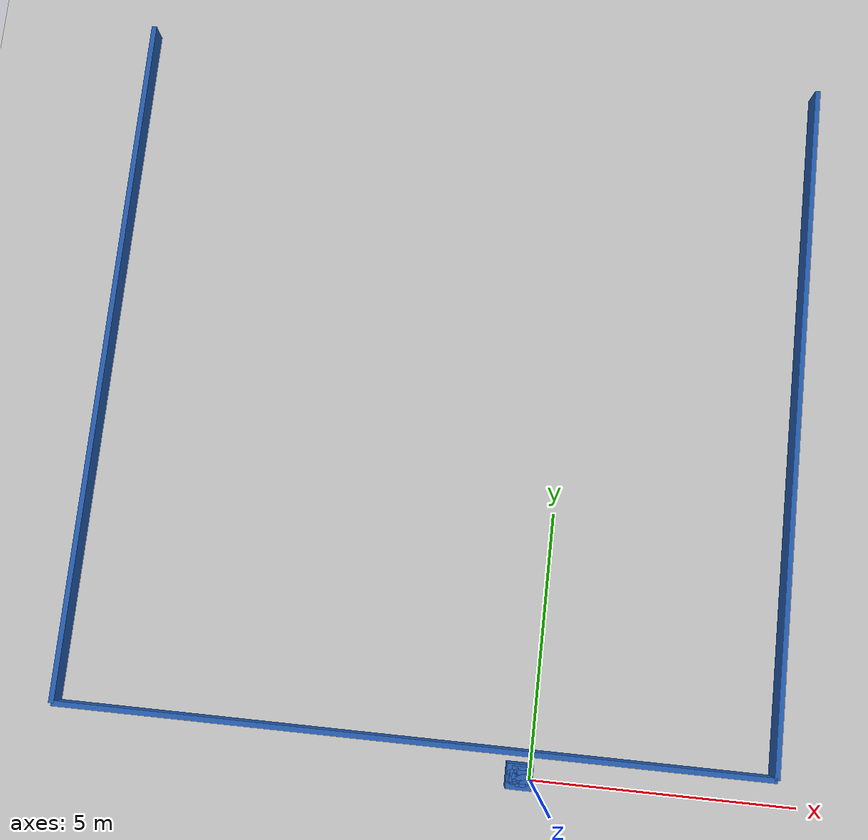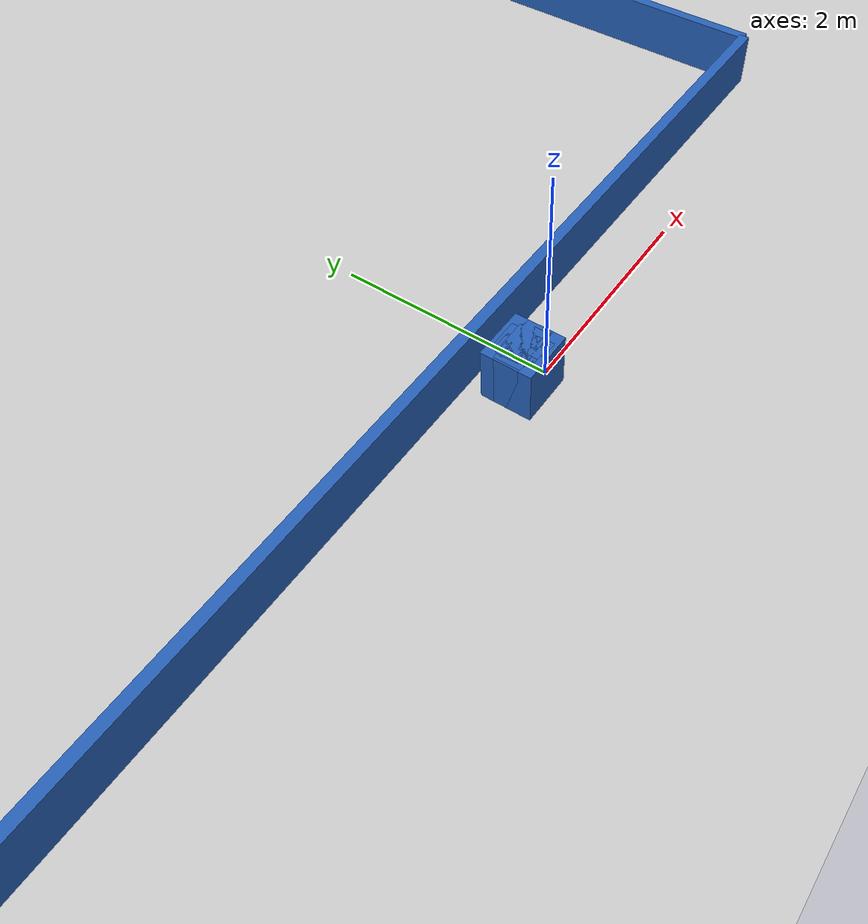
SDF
<?xml version="1.0" ?>
    <sdf version="1.5">
      <world name="default">
        <!-- A global light source -->
        <include>
          <uri>model://sun</uri>
        </include>
        <!-- A ground plane -->
        <include>
          <uri>model://ground_plane</uri>
        </include>

    <model name='libopen_space_final_T2B_112_98'>
      <static>1</static>
      <pose frame=''>-0.225000 0.075000 0.000000 0.000000 0.000000 0.000000</pose>
      <link name='link'>
        <inertial>
          <mass>1</mass>
          <inertia>
            <ixx>0.145833</ixx>
            <ixy>0</ixy>
            <ixz>0</ixz>
            <iyy>0.145833</iyy>
            <iyz>0</iyz>
            <izz>0.125</izz>
          </inertia>
        </inertial>
        <collision name='collision'>
          <geometry>
            <box>
              <size>0.12 0.34 1</size>
            </box>
          </geometry>
          <max_contacts>10</max_contacts>
          <surface>
            <contact>
              <ode/>
            </contact>
            <bounce/>
            <friction>
              <torsional>
                <ode/>
              </torsional>
              <ode/>
            </friction>
          </surface>
        </collision>
        <visual name='visual'>
          <geometry>
            <box>
              <size>0.12 0.34 1</size>
            </box>
          </geometry>
	    <material>
              <ambient>0.152000 0.379000 0.720000 1</ambient>
	      <diffuse>0.152000 0.379000 0.720000 1</diffuse>
          </material>
          <material>
            <script>
              <name>Gazebo/Grey</name>
              <uri>file://media/materials/scripts/gazebo.material</uri>
            </script>
          </material>
        </visual>
        <self_collide>0</self_collide>
        <kinematic>0</kinematic>
        <gravity>1</gravity>
      </link>
      <plugin name='libopen_space_final_T2B_112_98' filename='libopen_space_final_T2B_112_98.so'/>
    </model>

    <model name='libopen_space_final_T2B_129_92'>
      <static>1</static>
      <pose frame=''>-0.225000 0.075000 0.000000 0.000000 0.000000 0.000000</pose>
      <link name='link'>
        <inertial>
          <mass>1</mass>
          <inertia>
            <ixx>0.145833</ixx>
            <ixy>0</ixy>
            <ixz>0</ixz>
            <iyy>0.145833</iyy>
            <iyz>0</iyz>
            <izz>0.125</izz>
          </inertia>
        </inertial>
        <collision name='collision'>
          <geometry>
            <box>
              <size>0.23 0.34 1</size>
            </box>
          </geometry>
          <max_contacts>10</max_contacts>
          <surface>
            <contact>
              <ode/>
            </contact>
            <bounce/>
            <friction>
              <torsional>
                <ode/>
              </torsional>
              <ode/>
            </friction>
          </surface>
        </collision>
        <visual name='visual'>
          <geometry>
            <box>
              <size>0.23 0.34 1</size>
            </box>
          </geometry>
	    <material>
              <ambient>0.152000 0.379000 0.720000 1</ambient>
	      <diffuse>0.152000 0.379000 0.720000 1</diffuse>
          </material>
          <material>
            <script>
              <name>Gazebo/Grey</name>
              <uri>file://media/materials/scripts/gazebo.material</uri>
            </script>
          </material>
        </visual>
        <self_collide>0</self_collide>
        <kinematic>0</kinematic>
        <gravity>1</gravity>
      </link>
      <plugin name='libopen_space_final_T2B_129_92' filename='libopen_space_final_T2B_129_92.so'/>
    </model>

    <model name='libopen_space_final_T2B_92_34'>
      <static>1</static>
      <pose frame=''>-0.225000 0.075000 0.000000 0.000000 0.000000 0.000000</pose>
      <link name='link'>
        <inertial>
          <mass>1</mass>
          <inertia>
            <ixx>0.145833</ixx>
            <ixy>0</ixy>
            <ixz>0</ixz>
            <iyy>0.145833</iyy>
            <iyz>0</iyz>
            <izz>0.125</izz>
          </inertia>
        </inertial>
        <collision name='collision'>
          <geometry>
            <box>
              <size>0.23 0.24 1</size>
            </box>
          </geometry>
          <max_contacts>10</max_contacts>
          <surface>
            <contact>
              <ode/>
            </contact>
            <bounce/>
            <friction>
              <torsional>
                <ode/>
              </torsional>
              <ode/>
            </friction>
          </surface>
        </collision>
        <visual name='visual'>
          <geometry>
            <box>
              <size>0.23 0.24 1</size>
            </box>
          </geometry>
	    <material>
              <ambient>0.152000 0.379000 0.720000 1</ambient>
	      <diffuse>0.152000 0.379000 0.720000 1</diffuse>
          </material>
          <material>
            <script>
              <name>Gazebo/Grey</name>
              <uri>file://media/materials/scripts/gazebo.material</uri>
            </script>
          </material>
        </visual>
        <self_collide>0</self_collide>
        <kinematic>0</kinematic>
        <gravity>1</gravity>
      </link>
      <plugin name='libopen_space_final_T2B_92_34' filename='libopen_space_final_T2B_92_34.so'/>
    </model>

    <model name='libopen_space_final_T2B_90_95'>
      <static>1</static>
      <pose frame=''>-0.225000 0.075000 0.000000 0.000000 0.000000 0.000000</pose>
      <link name='link'>
        <inertial>
          <mass>1</mass>
          <inertia>
            <ixx>0.145833</ixx>
            <ixy>0</ixy>
            <ixz>0</ixz>
            <iyy>0.145833</iyy>
            <iyz>0</iyz>
            <izz>0.125</izz>
          </inertia>
        </inertial>
        <collision name='collision'>
          <geometry>
            <box>
              <size>0.45 0.24 1</size>
            </box>
          </geometry>
          <max_contacts>10</max_contacts>
          <surface>
            <contact>
              <ode/>
            </contact>
            <bounce/>
            <friction>
              <torsional>
                <ode/>
              </torsional>
              <ode/>
            </friction>
          </surface>
        </collision>
        <visual name='visual'>
          <geometry>
            <box>
              <size>0.45 0.24 1</size>
            </box>
          </geometry>
	    <material>
              <ambient>0.152000 0.379000 0.720000 1</ambient>
	      <diffuse>0.152000 0.379000 0.720000 1</diffuse>
          </material>
          <material>
            <script>
              <name>Gazebo/Grey</name>
              <uri>file://media/materials/scripts/gazebo.material</uri>
            </script>
          </material>
        </visual>
        <self_collide>0</self_collide>
        <kinematic>0</kinematic>
        <gravity>1</gravity>
      </link>
      <plugin name='libopen_space_final_T2B_90_95' filename='libopen_space_final_T2B_90_95.so'/>
    </model>

    <model name='libopen_space_final_T2B_127_53'>
      <static>1</static>
      <pose frame=''>-0.225000 0.075000 0.000000 0.000000 0.000000 0.000000</pose>
      <link name='link'>
        <inertial>
          <mass>1</mass>
          <inertia>
            <ixx>0.145833</ixx>
            <ixy>0</ixy>
            <ixz>0</ixz>
            <iyy>0.145833</iyy>
            <iyz>0</iyz>
            <izz>0.125</izz>
          </inertia>
        </inertial>
        <collision name='collision'>
          <geometry>
            <box>
              <size>0.34 0.28 1</size>
            </box>
          </geometry>
          <max_contacts>10</max_contacts>
          <surface>
            <contact>
              <ode/>
            </contact>
            <bounce/>
            <friction>
              <torsional>
                <ode/>
              </torsional>
              <ode/>
            </friction>
          </surface>
        </collision>
        <visual name='visual'>
          <geometry>
            <box>
              <size>0.34 0.28 1</size>
            </box>
          </geometry>
	    <material>
              <ambient>0.152000 0.379000 0.720000 1</ambient>
	      <diffuse>0.152000 0.379000 0.720000 1</diffuse>
          </material>
          <material>
            <script>
              <name>Gazebo/Grey</name>
              <uri>file://media/materials/scripts/gazebo.material</uri>
            </script>
          </material>
        </visual>
        <self_collide>0</self_collide>
        <kinematic>0</kinematic>
        <gravity>1</gravity>
      </link>
      <plugin name='libopen_space_final_T2B_127_53' filename='libopen_space_final_T2B_127_53.so'/>
    </model>

    <model name='libopen_space_final_T2B_99_64'>
      <static>1</static>
      <pose frame=''>-0.225000 0.075000 0.000000 0.000000 0.000000 0.000000</pose>
      <link name='link'>
        <inertial>
          <mass>1</mass>
          <inertia>
            <ixx>0.145833</ixx>
            <ixy>0</ixy>
            <ixz>0</ixz>
            <iyy>0.145833</iyy>
            <iyz>0</iyz>
            <izz>0.125</izz>
          </inertia>
        </inertial>
        <collision name='collision'>
          <geometry>
            <box>
              <size>0.36 0.26 1</size>
            </box>
          </geometry>
          <max_contacts>10</max_contacts>
          <surface>
            <contact>
              <ode/>
            </contact>
            <bounce/>
            <friction>
              <torsional>
                <ode/>
              </torsional>
              <ode/>
            </friction>
          </surface>
        </collision>
        <visual name='visual'>
          <geometry>
            <box>
              <size>0.36 0.26 1</size>
            </box>
          </geometry>
	    <material>
              <ambient>0.152000 0.379000 0.720000 1</ambient>
	      <diffuse>0.152000 0.379000 0.720000 1</diffuse>
          </material>
          <material>
            <script>
              <name>Gazebo/Grey</name>
              <uri>file://media/materials/scripts/gazebo.material</uri>
            </script>
          </material>
        </visual>
        <self_collide>0</self_collide>
        <kinematic>0</kinematic>
        <gravity>1</gravity>
      </link>
      <plugin name='libopen_space_final_T2B_99_64' filename='libopen_space_final_T2B_99_64.so'/>
    </model>

    <model name='libopen_space_final_T2B_116_74'>
      <static>1</static>
      <pose frame=''>-0.225000 0.075000 0.000000 0.000000 0.000000 0.000000</pose>
      <link name='link'>
        <inertial>
          <mass>1</mass>
          <inertia>
            <ixx>0.145833</ixx>
            <ixy>0</ixy>
            <ixz>0</ixz>
            <iyy>0.145833</iyy>
            <iyz>0</iyz>
            <izz>0.125</izz>
          </inertia>
        </inertial>
        <collision name='collision'>
          <geometry>
            <box>
              <size>0.40 0.17 1</size>
            </box>
          </geometry>
          <max_contacts>10</max_contacts>
          <surface>
            <contact>
              <ode/>
            </contact>
            <bounce/>
            <friction>
              <torsional>
                <ode/>
              </torsional>
              <ode/>
            </friction>
          </surface>
        </collision>
        <visual name='visual'>
          <geometry>
            <box>
              <size>0.40 0.17 1</size>
            </box>
          </geometry>
	    <material>
              <ambient>0.152000 0.379000 0.720000 1</ambient>
	      <diffuse>0.152000 0.379000 0.720000 1</diffuse>
          </material>
          <material>
            <script>
              <name>Gazebo/Grey</name>
              <uri>file://media/materials/scripts/gazebo.material</uri>
            </script>
          </material>
        </visual>
        <self_collide>0</self_collide>
        <kinematic>0</kinematic>
        <gravity>1</gravity>
      </link>
      <plugin name='libopen_space_final_T2B_116_74' filename='libopen_space_final_T2B_116_74.so'/>
    </model>

    <model name='libopen_space_final_T2B_91_57'>
      <static>1</static>
      <pose frame=''>-0.225000 0.075000 0.000000 0.000000 0.000000 0.000000</pose>
      <link name='link'>
        <inertial>
          <mass>1</mass>
          <inertia>
            <ixx>0.145833</ixx>
            <ixy>0</ixy>
            <ixz>0</ixz>
            <iyy>0.145833</iyy>
            <iyz>0</iyz>
            <izz>0.125</izz>
          </inertia>
        </inertial>
        <collision name='collision'>
          <geometry>
            <box>
              <size>0.49 0.46 1</size>
            </box>
          </geometry>
          <max_contacts>10</max_contacts>
          <surface>
            <contact>
              <ode/>
            </contact>
            <bounce/>
            <friction>
              <torsional>
                <ode/>
              </torsional>
              <ode/>
            </friction>
          </surface>
        </collision>
        <visual name='visual'>
          <geometry>
            <box>
              <size>0.49 0.46 1</size>
            </box>
          </geometry>
	    <material>
              <ambient>0.152000 0.379000 0.720000 1</ambient>
	      <diffuse>0.152000 0.379000 0.720000 1</diffuse>
          </material>
          <material>
            <script>
              <name>Gazebo/Grey</name>
              <uri>file://media/materials/scripts/gazebo.material</uri>
            </script>
          </material>
        </visual>
        <self_collide>0</self_collide>
        <kinematic>0</kinematic>
        <gravity>1</gravity>
      </link>
      <plugin name='libopen_space_final_T2B_91_57' filename='libopen_space_final_T2B_91_57.so'/>
    </model>

    <model name='libopen_space_final_T2B_79_93'>
      <static>1</static>
      <pose frame=''>-0.225000 0.075000 0.000000 0.000000 0.000000 0.000000</pose>
      <link name='link'>
        <inertial>
          <mass>1</mass>
          <inertia>
            <ixx>0.145833</ixx>
            <ixy>0</ixy>
            <ixz>0</ixz>
            <iyy>0.145833</iyy>
            <iyz>0</iyz>
            <izz>0.125</izz>
          </inertia>
        </inertial>
        <collision name='collision'>
          <geometry>
            <box>
              <size>0.28 0.16 1</size>
            </box>
          </geometry>
          <max_contacts>10</max_contacts>
          <surface>
            <contact>
              <ode/>
            </contact>
            <bounce/>
            <friction>
              <torsional>
                <ode/>
              </torsional>
              <ode/>
            </friction>
          </surface>
        </collision>
        <visual name='visual'>
          <geometry>
            <box>
              <size>0.28 0.16 1</size>
            </box>
          </geometry>
	    <material>
              <ambient>0.152000 0.379000 0.720000 1</ambient>
	      <diffuse>0.152000 0.379000 0.720000 1</diffuse>
          </material>
          <material>
            <script>
              <name>Gazebo/Grey</name>
              <uri>file://media/materials/scripts/gazebo.material</uri>
            </script>
          </material>
        </visual>
        <self_collide>0</self_collide>
        <kinematic>0</kinematic>
        <gravity>1</gravity>
      </link>
      <plugin name='libopen_space_final_T2B_79_93' filename='libopen_space_final_T2B_79_93.so'/>
    </model>

    <model name='libopen_space_final_T2B_66_3'>
      <static>1</static>
      <pose frame=''>-0.225000 0.075000 0.000000 0.000000 0.000000 0.000000</pose>
      <link name='link'>
        <inertial>
          <mass>1</mass>
          <inertia>
            <ixx>0.145833</ixx>
            <ixy>0</ixy>
            <ixz>0</ixz>
            <iyy>0.145833</iyy>
            <iyz>0</iyz>
            <izz>0.125</izz>
          </inertia>
        </inertial>
        <collision name='collision'>
          <geometry>
            <box>
              <size>0.41 0.23 1</size>
            </box>
          </geometry>
          <max_contacts>10</max_contacts>
          <surface>
            <contact>
              <ode/>
            </contact>
            <bounce/>
            <friction>
              <torsional>
                <ode/>
              </torsional>
              <ode/>
            </friction>
          </surface>
        </collision>
        <visual name='visual'>
          <geometry>
            <box>
              <size>0.41 0.23 1</size>
            </box>
          </geometry>
	    <material>
              <ambient>0.152000 0.379000 0.720000 1</ambient>
	      <diffuse>0.152000 0.379000 0.720000 1</diffuse>
          </material>
          <material>
            <script>
              <name>Gazebo/Grey</name>
              <uri>file://media/materials/scripts/gazebo.material</uri>
            </script>
          </material>
        </visual>
        <self_collide>0</self_collide>
        <kinematic>0</kinematic>
        <gravity>1</gravity>
      </link>
      <plugin name='libopen_space_final_T2B_66_3' filename='libopen_space_final_T2B_66_3.so'/>
    </model>

    <model name='libopen_space_final_T2B_145_37'>
      <static>1</static>
      <pose frame=''>-0.225000 0.075000 0.000000 0.000000 0.000000 0.000000</pose>
      <link name='link'>
        <inertial>
          <mass>1</mass>
          <inertia>
            <ixx>0.145833</ixx>
            <ixy>0</ixy>
            <ixz>0</ixz>
            <iyy>0.145833</iyy>
            <iyz>0</iyz>
            <izz>0.125</izz>
          </inertia>
        </inertial>
        <collision name='collision'>
          <geometry>
            <box>
              <size>0.37 0.19 1</size>
            </box>
          </geometry>
          <max_contacts>10</max_contacts>
          <surface>
            <contact>
              <ode/>
            </contact>
            <bounce/>
            <friction>
              <torsional>
                <ode/>
              </torsional>
              <ode/>
            </friction>
          </surface>
        </collision>
        <visual name='visual'>
          <geometry>
            <box>
              <size>0.37 0.19 1</size>
            </box>
          </geometry>
	    <material>
              <ambient>0.152000 0.379000 0.720000 1</ambient>
	      <diffuse>0.152000 0.379000 0.720000 1</diffuse>
          </material>
          <material>
            <script>
              <name>Gazebo/Grey</name>
              <uri>file://media/materials/scripts/gazebo.material</uri>
            </script>
          </material>
        </visual>
        <self_collide>0</self_collide>
        <kinematic>0</kinematic>
        <gravity>1</gravity>
      </link>
      <plugin name='libopen_space_final_T2B_145_37' filename='libopen_space_final_T2B_145_37.so'/>
    </model>

    <model name='libopen_space_final_T2B_125_67'>
      <static>1</static>
      <pose frame=''>-0.225000 0.075000 0.000000 0.000000 0.000000 0.000000</pose>
      <link name='link'>
        <inertial>
          <mass>1</mass>
          <inertia>
            <ixx>0.145833</ixx>
            <ixy>0</ixy>
            <ixz>0</ixz>
            <iyy>0.145833</iyy>
            <iyz>0</iyz>
            <izz>0.125</izz>
          </inertia>
        </inertial>
        <collision name='collision'>
          <geometry>
            <box>
              <size>0.29 0.39 1</size>
            </box>
          </geometry>
          <max_contacts>10</max_contacts>
          <surface>
            <contact>
              <ode/>
            </contact>
            <bounce/>
            <friction>
              <torsional>
                <ode/>
              </torsional>
              <ode/>
            </friction>
          </surface>
        </collision>
        <visual name='visual'>
          <geometry>
            <box>
              <size>0.29 0.39 1</size>
            </box>
          </geometry>
	    <material>
              <ambient>0.152000 0.379000 0.720000 1</ambient>
	      <diffuse>0.152000 0.379000 0.720000 1</diffuse>
          </material>
          <material>
            <script>
              <name>Gazebo/Grey</name>
              <uri>file://media/materials/scripts/gazebo.material</uri>
            </script>
          </material>
        </visual>
        <self_collide>0</self_collide>
        <kinematic>0</kinematic>
        <gravity>1</gravity>
      </link>
      <plugin name='libopen_space_final_T2B_125_67' filename='libopen_space_final_T2B_125_67.so'/>
    </model>

    <model name='libopen_space_final_T2B_123_13'>
      <static>1</static>
      <pose frame=''>-0.225000 0.075000 0.000000 0.000000 0.000000 0.000000</pose>
      <link name='link'>
        <inertial>
          <mass>1</mass>
          <inertia>
            <ixx>0.145833</ixx>
            <ixy>0</ixy>
            <ixz>0</ixz>
            <iyy>0.145833</iyy>
            <iyz>0</iyz>
            <izz>0.125</izz>
          </inertia>
        </inertial>
        <collision name='collision'>
          <geometry>
            <box>
              <size>0.49 0.22 1</size>
            </box>
          </geometry>
          <max_contacts>10</max_contacts>
          <surface>
            <contact>
              <ode/>
            </contact>
            <bounce/>
            <friction>
              <torsional>
                <ode/>
              </torsional>
              <ode/>
            </friction>
          </surface>
        </collision>
        <visual name='visual'>
          <geometry>
            <box>
              <size>0.49 0.22 1</size>
            </box>
          </geometry>
	    <material>
              <ambient>0.152000 0.379000 0.720000 1</ambient>
	      <diffuse>0.152000 0.379000 0.720000 1</diffuse>
          </material>
          <material>
            <script>
              <name>Gazebo/Grey</name>
              <uri>file://media/materials/scripts/gazebo.material</uri>
            </script>
          </material>
        </visual>
        <self_collide>0</self_collide>
        <kinematic>0</kinematic>
        <gravity>1</gravity>
      </link>
      <plugin name='libopen_space_final_T2B_123_13' filename='libopen_space_final_T2B_123_13.so'/>
    </model>

    <model name='libopen_space_final_T2B_118_50'>
      <static>1</static>
      <pose frame=''>-0.225000 0.075000 0.000000 0.000000 0.000000 0.000000</pose>
      <link name='link'>
        <inertial>
          <mass>1</mass>
          <inertia>
            <ixx>0.145833</ixx>
            <ixy>0</ixy>
            <ixz>0</ixz>
            <iyy>0.145833</iyy>
            <iyz>0</iyz>
            <izz>0.125</izz>
          </inertia>
        </inertial>
        <collision name='collision'>
          <geometry>
            <box>
              <size>0.42 0.17 1</size>
            </box>
          </geometry>
          <max_contacts>10</max_contacts>
          <surface>
            <contact>
              <ode/>
            </contact>
            <bounce/>
            <friction>
              <torsional>
                <ode/>
              </torsional>
              <ode/>
            </friction>
          </surface>
        </collision>
        <visual name='visual'>
          <geometry>
            <box>
              <size>0.42 0.17 1</size>
            </box>
          </geometry>
	    <material>
              <ambient>0.152000 0.379000 0.720000 1</ambient>
	      <diffuse>0.152000 0.379000 0.720000 1</diffuse>
          </material>
          <material>
            <script>
              <name>Gazebo/Grey</name>
              <uri>file://media/materials/scripts/gazebo.material</uri>
            </script>
          </material>
        </visual>
        <self_collide>0</self_collide>
        <kinematic>0</kinematic>
        <gravity>1</gravity>
      </link>
      <plugin name='libopen_space_final_T2B_118_50' filename='libopen_space_final_T2B_118_50.so'/>
    </model>

        <model name='bottom_wall'>
          <static>1</static>
          <pose frame=''>-2.25 0.5 0.000000 0.000000 0.000000 1.57079632</pose>
          <link name='link'>
            <inertial>
            <mass>1</mass>
            <inertia>
              <ixx>0.145833</ixx>
              <ixy>0</ixy>
              <ixz>0</ixz>
              <iyy>0.145833</iyy>
              <iyz>0</iyz>
              <izz>0.125</izz>
            </inertia>
            </inertial>
            <collision name='collision'>
            <geometry>
              <box>
              <size>0.1 13.5 1</size>
              </box>
            </geometry>
            <max_contacts>10</max_contacts>
            <surface>
              <contact>
              <ode/>
              </contact>
              <bounce/>
              <friction>
              <torsional>
                <ode/>
              </torsional>
              <ode/>
              </friction>
            </surface>
            </collision>
            <visual name='visual'>
            <geometry>
              <box>
              <size>0.1 13.5 1</size>
              </box>
            </geometry>
            <material>
              <ambient>0.152000 0.379000 0.720000 1</ambient>
            <diffuse>0.152000 0.379000 0.720000 1</diffuse>
            </material>
            <material>
              <script>
              <name>Gazebo/Grey</name>
              <uri>file://media/materials/scripts/gazebo.material</uri>
              </script>
            </material>
            </visual>
            <self_collide>0</self_collide>
            <kinematic>0</kinematic>
            <gravity>1</gravity>
          </link>
        </model>

        <model name='left_wall'>
          <static>1</static>
          <pose frame=''>-9 7.25 0.000000 0.000000 0.000000 0.000000</pose>
          <link name='link'>
            <inertial>
            <mass>1</mass>
            <inertia>
              <ixx>0.145833</ixx>
              <ixy>0</ixy>
              <ixz>0</ixz>
              <iyy>0.145833</iyy>
              <iyz>0</iyz>
              <izz>0.125</izz>
            </inertia>
            </inertial>
            <collision name='collision'>
            <geometry>
              <box>
              <size>0.1 13.5 1</size>
              </box>
            </geometry>
            <max_contacts>10</max_contacts>
            <surface>
              <contact>
              <ode/>
              </contact>
              <bounce/>
              <friction>
              <torsional>
                <ode/>
              </torsional>
              <ode/>
              </friction>
            </surface>
            </collision>
            <visual name='visual'>
            <geometry>
              <box>
              <size>0.1 13.5 1</size>
              </box>
            </geometry>
            <material>
              <ambient>0.152000 0.379000 0.720000 1</ambient>
            <diffuse>0.152000 0.379000 0.720000 1</diffuse>
            </material>
            <material>
              <script>
              <name>Gazebo/Grey</name>
              <uri>file://media/materials/scripts/gazebo.material</uri>
              </script>
            </material>
            </visual>
            <self_collide>0</self_collide>
            <kinematic>0</kinematic>
            <gravity>1</gravity>
          </link>
        </model>

        <model name='right_wall'>
          <static>1</static>
          <pose frame=''>4.5 7.25 0.000000 0.000000 0.000000 0.000000</pose>
          <link name='link'>
            <inertial>
            <mass>1</mass>
            <inertia>
              <ixx>0.145833</ixx>
              <ixy>0</ixy>
              <ixz>0</ixz>
              <iyy>0.145833</iyy>
              <iyz>0</iyz>
              <izz>0.125</izz>
            </inertia>
            </inertial>
            <collision name='collision'>
            <geometry>
              <box>
              <size>0.1 13.5 1</size>
              </box>
            </geometry>
            <max_contacts>10</max_contacts>
            <surface>
              <contact>
              <ode/>
              </contact>
              <bounce/>
              <friction>
              <torsional>
                <ode/>
              </torsional>
              <ode/>
              </friction>
            </surface>
            </collision>
            <visual name='visual'>
            <geometry>
              <box>
              <size>0.1 13.5 1</size>
              </box>
            </geometry>
            <material>
              <ambient>0.152000 0.379000 0.720000 1</ambient>
            <diffuse>0.152000 0.379000 0.720000 1</diffuse>
            </material>
            <material>
              <script>
              <name>Gazebo/Grey</name>
              <uri>file://media/materials/scripts/gazebo.material</uri>
              </script>
            </material>
            </visual>
            <self_collide>0</self_collide>
            <kinematic>0</kinematic>
            <gravity>1</gravity>
          </link>
        </model>

      </world>
    </sdf>"
